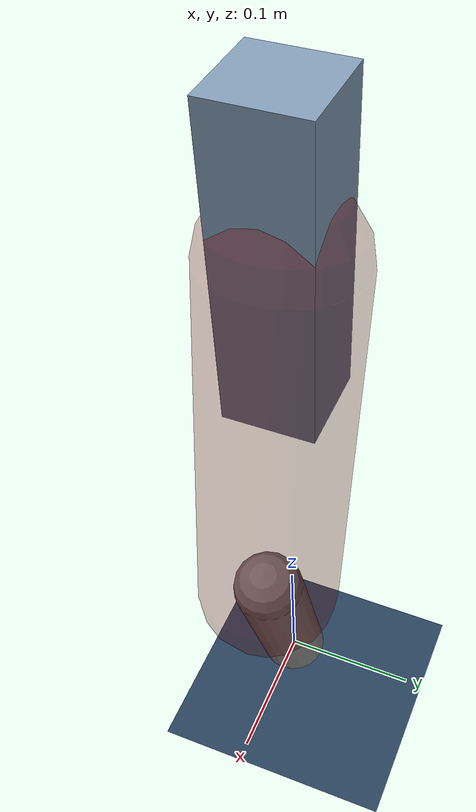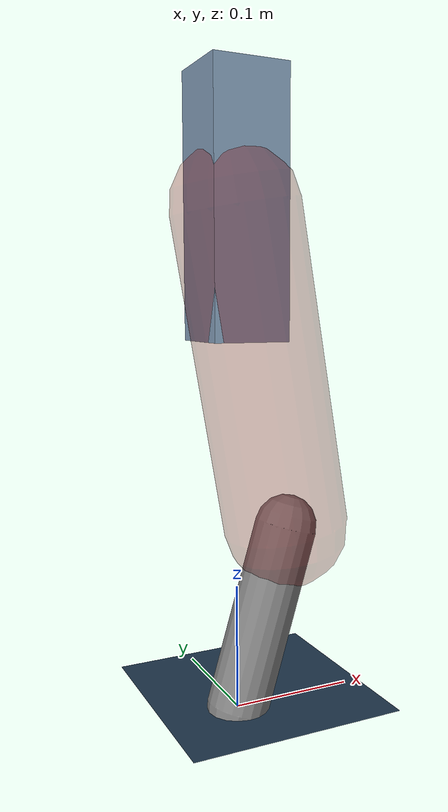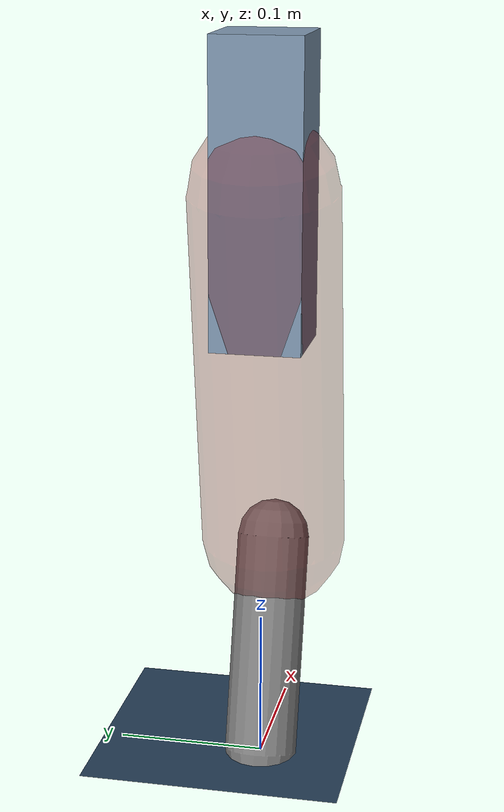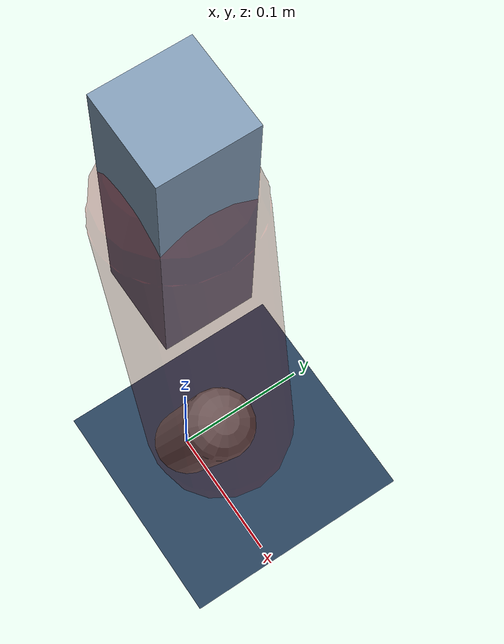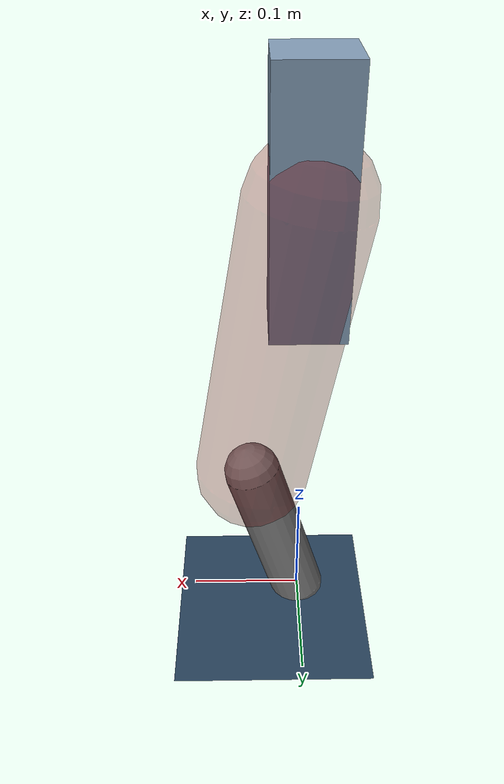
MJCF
<mujoco model="Hopper2D">
	<compiler inertiafromgeom="true" angle="radian" />
	<option timestep="0.001" integrator="implicit" cone="elliptic" solver="Newton" tolerance="1e-10" />

	<default>
		<geom contype="1" conaffinity="1" condim="3" friction="2 0.005 0.0001" solref="0.005 1" />
		<joint limited="true" damping="0.1" />
	</default>

	<asset>
		<texture name="skybox" type="skybox" builtin="gradient" rgb1=".4 .6 .8" rgb2="0 0 0" width="800" height="800" />
		<texture name="grid" type="2d" builtin="checker" rgb1=".1 .2 .3" rgb2=".2 .3 .4" width="300" height="300" mark="edge" markrgb=".2 .3 .4" />
		<material name="ground" texture="grid" texrepeat="1 1" texuniform="true" reflectance="0.1" />
		<material name="leg" rgba="0.5 0.6 0.7 1" />
	</asset>

	<worldbody>

		<geom name="floor" type="plane" size="5 5 0.25" material="ground" />

		<light directional="false" diffuse="0.8 0.8 0.8" specular="0.3 0.3 0.3" pos="0 0 2" dir="0 0 -1" />
		<light mode="targetbodycom" target="base" directional="false" diffuse="0.8 0.8 0.8" specular="0.3 0.3 0.3" pos="0 0 2" dir="0 0 -1" />

		<camera name="fixed" pos="0 -2 1" xyaxes="1 0 0 0 0 1" />
		<camera name="tracking" mode="trackcom" pos="0 -3 1" />

		<body name="root" pos="0 0 0.39398236957801186">
			<joint name="slide_x" type="slide" axis="1 0 0" range="-100 100" />
			<joint name="slide_z" type="slide" axis="0 0 1" range="0 10" />

			<body name="base" pos="0 0 0">
				<geom name="torso" type="box" size="0.03 0.03 0.1" mass="3.2430000000000003" material="leg" />

				<body name="link1" pos="0 0 0" euler="0 1.3990261659592027 0">
					<joint type="hinge" axis="0 -1 0" pos="0 0 0" name="hinge1" limited="true" range="-3.14 3.14" stiffness="0" damping="0.1" />
					<geom name="thigh" type="capsule" fromto="0 0 0 0.2525533218098268 0 0" size="0.05" rgba="0.5 0 0 0.3" mass="0.8630386367055497" />

					<body name="link2" pos="0.2525533218098268 0 0" euler="0 0.4608512303349597 0">
						<joint type="hinge" axis="0 -1 0" pos="0 0 0" name="hinge2" limited="true" range="-3.14 3.14" stiffness="0" damping="0.1" />
						<geom name="shank" type="capsule" fromto="0 0 0 0.15142904776818505 0 0" size="0.025" mass="0.35898614299136655" />

					</body>
				</body>
			</body>
		</body>
	</worldbody>

	<actuator>
		<motor name="torque1" joint="hinge1" ctrlrange="-94.35981653106587 94.35981653106587" ctrllimited="true" gear="1" />
		<motor name="torque2" joint="hinge2" ctrlrange="-155.33203277302943 155.33203277302943" ctrllimited="true" gear="1" />
	</actuator>
</mujoco>
